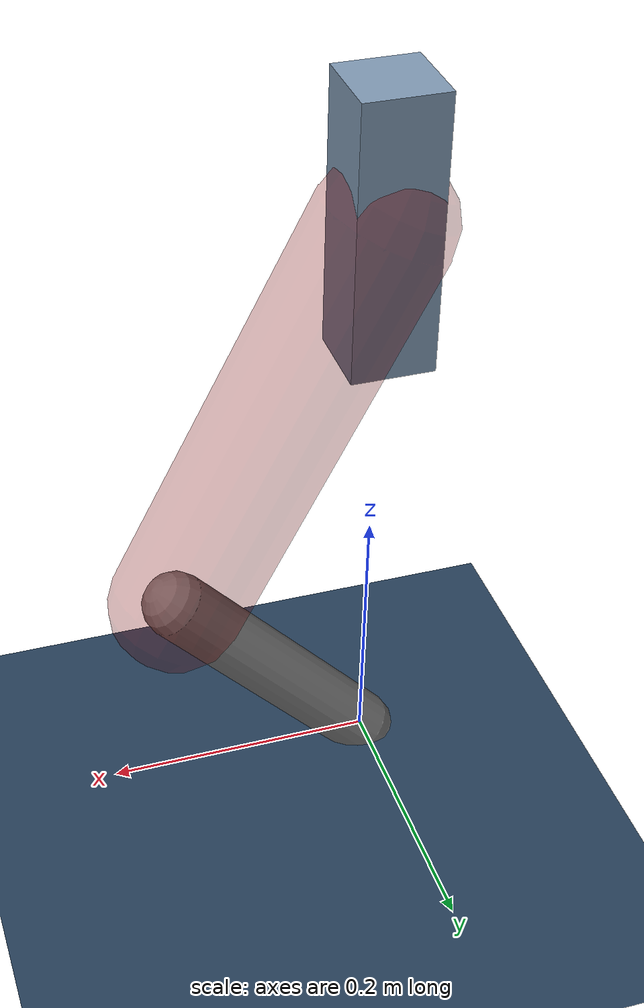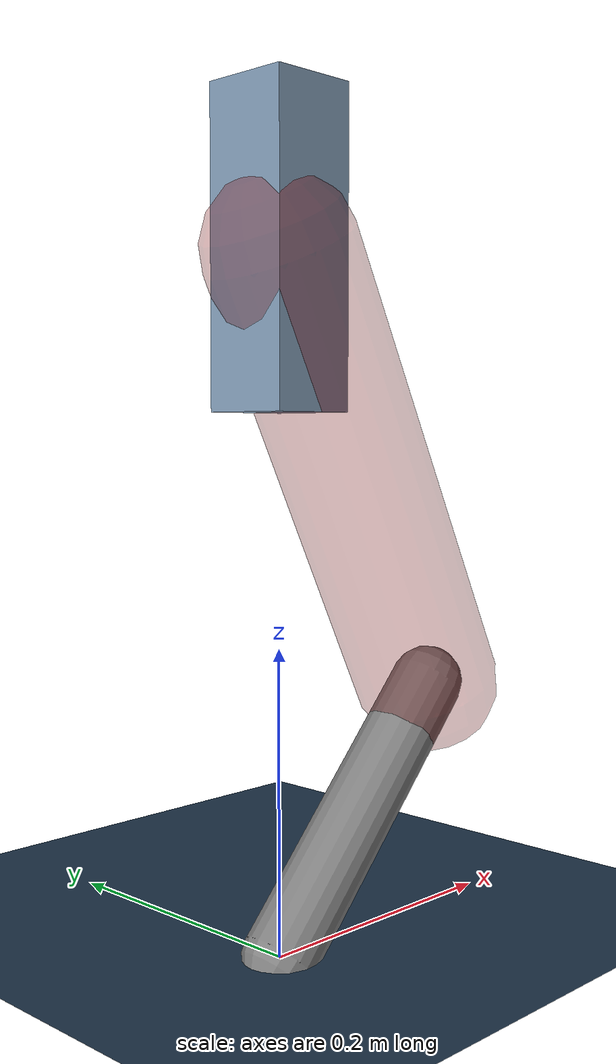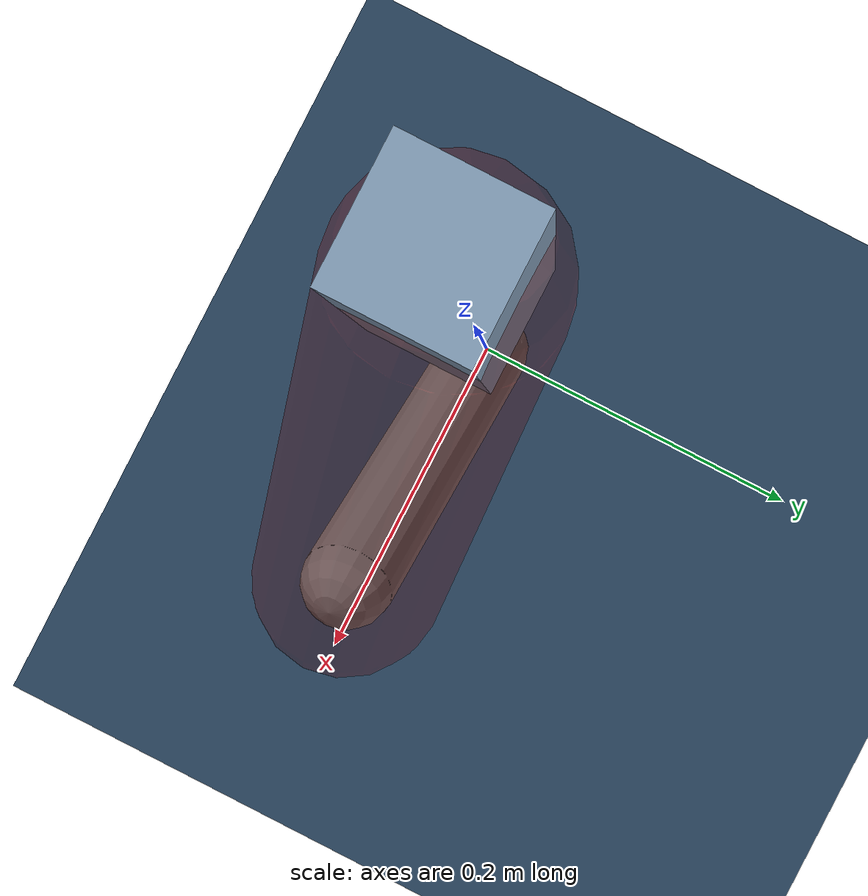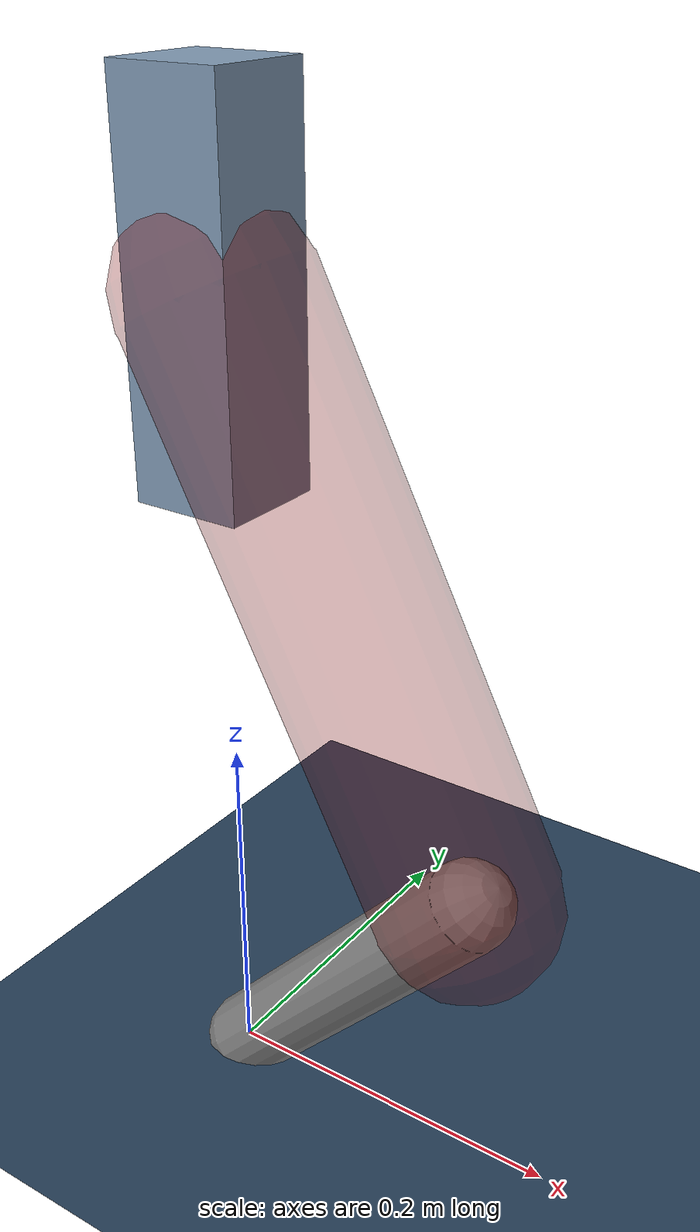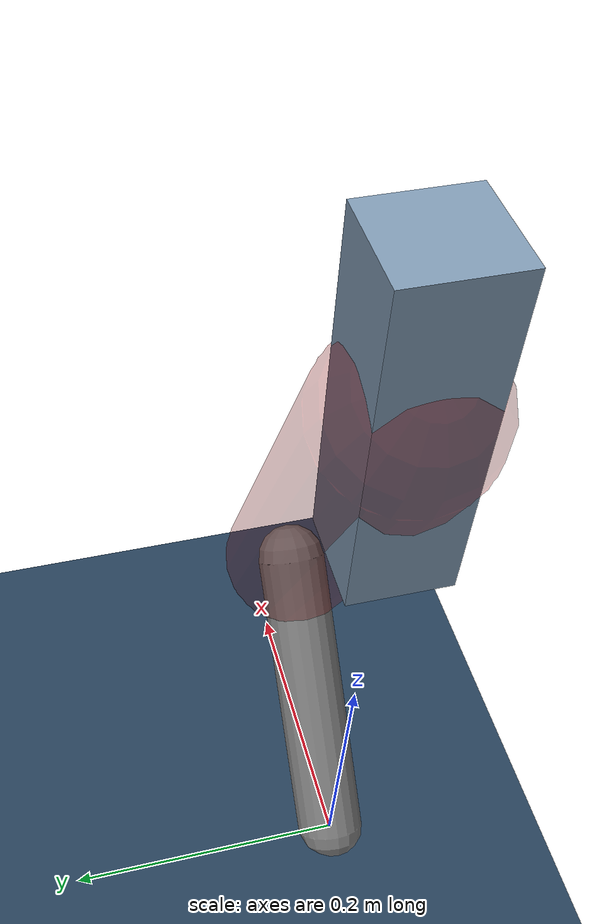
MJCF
<mujoco model="Hopper2D">
	<compiler inertiafromgeom="true" angle="radian" />
	<option timestep="0.001" integrator="implicit" cone="elliptic" solver="Newton" tolerance="1e-10" />

	<default>
		<geom contype="1" conaffinity="1" condim="3" friction="2 0.005 0.0001" solref="0.005 1" />
		<joint limited="true" damping="0.1" />
	</default>

	<asset>
		<texture name="skybox" type="skybox" builtin="gradient" rgb1=".4 .6 .8" rgb2="0 0 0" width="800" height="800" />
		<texture name="grid" type="2d" builtin="checker" rgb1=".1 .2 .3" rgb2=".2 .3 .4" width="300" height="300" mark="edge" markrgb=".2 .3 .4" />
		<material name="ground" texture="grid" texrepeat="1 1" texuniform="true" reflectance="0.1" />
		<material name="leg" rgba="0.5 0.6 0.7 1" />
	</asset>

	<worldbody>

		<geom name="floor" type="plane" size="5 5 0.25" material="ground" />

		<light directional="false" diffuse="0.8 0.8 0.8" specular="0.3 0.3 0.3" pos="0 0 2" dir="0 0 -1" />
		<light mode="targetbodycom" target="base" directional="false" diffuse="0.8 0.8 0.8" specular="0.3 0.3 0.3" pos="0 0 2" dir="0 0 -1" />

		<camera name="fixed" pos="0 -2 1" xyaxes="1 0 0 0 0 1" />
		<camera name="tracking" mode="trackcom" pos="0 -3 1" />

		<body name="root" pos="0 0 0.44881192600996184">
			<joint name="slide_x" type="slide" axis="1 0 0" range="-100 100" />
			<joint name="slide_z" type="slide" axis="0 0 1" range="0 10" />

			<body name="base" pos="0 0 0">
				<geom name="torso" type="box" size="0.03 0.03 0.1" mass="2.401" material="leg" />

				<body name="link1" pos="0 0 0" euler="0 1.096570020196407 0">
					<joint type="hinge" axis="0 -1 0" pos="0 0 0" name="hinge1" limited="true" range="-3.14 3.14" stiffness="0" damping="0.1" />
					<geom name="thigh" type="capsule" fromto="0 0 0 0.32369115406012366 0 0" size="0.05" rgba="0.5 0 0 0.3" mass="1.0534352313683464" />

					<body name="link2" pos="0.32369115406012366 0 0" euler="0 1.2174417371338075 0">
						<joint type="hinge" axis="0 -1 0" pos="0 0 0" name="hinge2" limited="true" range="-3.14 3.14" stiffness="0" damping="0.1" />
						<geom name="shank" type="capsule" fromto="0 0 0 0.21844632430704444 0 0" size="0.025" mass="0.41635705944563556" />

					</body>
				</body>
			</body>
		</body>
	</worldbody>

	<actuator>
		<motor name="torque1" joint="hinge1" ctrlrange="-65.60513939332328 65.60513939332328" ctrllimited="true" gear="1" />
		<motor name="torque2" joint="hinge2" ctrlrange="-123.82140997318514 123.82140997318514" ctrllimited="true" gear="1" />
	</actuator>
</mujoco>
